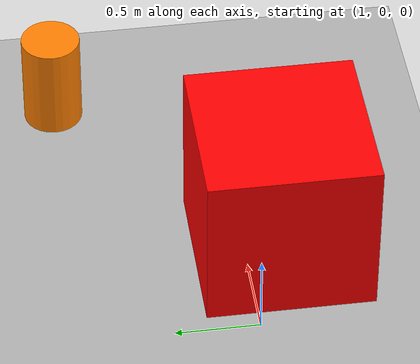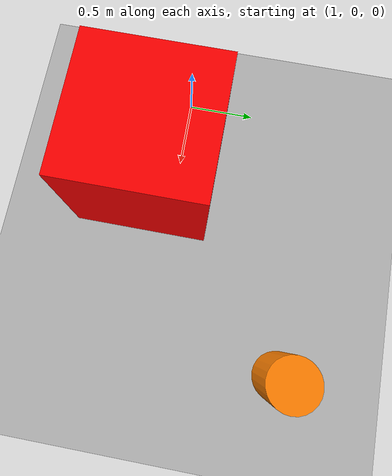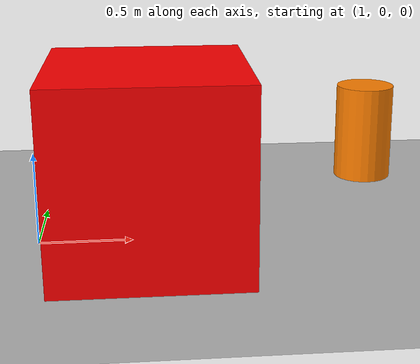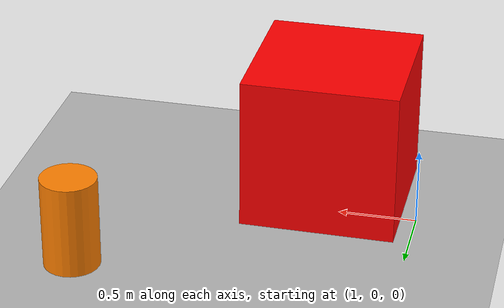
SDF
<?xml version="1.0" ?>
<sdf version="1.8">
  <world name="my_clip_world">

    <!-- 기본 시스템 -->
    <plugin
      filename="gz-sim-physics-system"
      name="gz::sim::systems::Physics"/>
    <plugin
      filename="gz-sim-user-commands-system"
      name="gz::sim::systems::UserCommands"/>
    <plugin
      filename="gz-sim-scene-broadcaster-system"
      name="gz::sim::systems::SceneBroadcaster"/>
    <plugin
      filename="gz-sim-sensors-system"
      name="gz::sim::systems::Sensors">
      <render_engine>ogre2</render_engine>
    </plugin>

    <!-- 바닥 -->
    <model name="ground_plane">
      <static>true</static>
      <link name="link">
        <collision name="collision">
          <geometry>
            <plane>
              <normal>0 0 1</normal>
              <size>20 20</size>
            </plane>
          </geometry>
        </collision>
        <visual name="visual">
          <geometry>
            <plane>
              <normal>0 0 1</normal>
              <size>20 20</size>
            </plane>
          </geometry>
          <material>
            <ambient>0.7 0.7 0.7 1</ambient>
            <diffuse>0.7 0.7 0.7 1</diffuse>
          </material>
        </visual>
      </link>
    </model>

    <!-- 조명 -->
    <light type="directional" name="sun">
      <cast_shadows>true</cast_shadows>
      <pose>0 0 10 0 0 0</pose>
      <diffuse>0.8 0.8 0.8 1</diffuse>
      <specular>0.2 0.2 0.2 1</specular>
      <direction>-0.5 0.1 -0.9</direction>
    </light>

    <!-- 빨간 박스 -->
    <model name="red_box">
      <static>false</static>
      <pose>1.6 -0.2 0.5 0 0 0</pose>
      <link name="link">
        <inertial>
          <mass>1.0</mass>
          <inertia>
            <ixx>0.166</ixx>
            <iyy>0.166</iyy>
            <izz>0.166</izz>
            <ixy>0.0</ixy>
            <ixz>0.0</ixz>
            <iyz>0.0</iyz>
          </inertia>
        </inertial>
        <collision name="collision">
          <geometry>
            <box>
              <size>1 1 1</size>
            </box>
          </geometry>
        </collision>
        <visual name="visual">
          <geometry>
            <box>
              <size>1 1 1</size>
            </box>
          </geometry>
          <material>
            <ambient>1 0 0 1</ambient>
            <diffuse>1 0 0 1</diffuse>
          </material>
        </visual>
      </link>
    </model>

    <model name="cone">
      <static>false</static>
      <pose>3.0 1.0 0 0 0 0</pose>
      <link name="link">
        <inertial>
          <mass>0.5</mass>
          <inertia>
            <ixx>0.02</ixx>
            <iyy>0.02</iyy>
            <izz>0.02</izz>
            <ixy>0.0</ixy>
            <ixz>0.0</ixz>
            <iyz>0.0</iyz>
          </inertia>
        </inertial>
        <collision name="collision">
          <geometry>
            <cylinder>
              <radius>0.18</radius>
              <length>0.6</length>
            </cylinder>
          </geometry>
          <pose>0 0 0.3 0 0 0</pose>
        </collision>
        <visual name="visual">
          <geometry>
            <cylinder>
              <radius>0.18</radius>
              <length>0.6</length>
            </cylinder>
          </geometry>
          <pose>0 0 0.3 0 0 0</pose>
          <material>
            <ambient>1 0.5 0 1</ambient>
            <diffuse>1 0.5 0 1</diffuse>
          </material>
        </visual>
      </link>
    </model>

    <!-- RGBD 카메라 -->
    <model name="rgbd_camera">
      <static>true</static>
      <pose>1.5 0 1.0 0 0.25 0</pose>
      <link name="link">
        <sensor name="rgbd_sensor" type="rgbd_camera">
          <always_on>true</always_on>
          <update_rate>10</update_rate>
          <topic>/rgbd_camera</topic>

          <camera>
            <horizontal_fov>1.047</horizontal_fov>
            <image>
              <width>640</width>
              <height>480</height>
              <format>R8G8B8</format>
            </image>
            <clip>
              <near>0.1</near>
              <far>100</far>
            </clip>
          </camera>

          <depth_camera>
            <clip>
              <near>0.1</near>
              <far>10.0</far>
            </clip>
          </depth_camera>

          <visualize>true</visualize>
        </sensor>
      </link>
    </model>

  </world>
</sdf>
